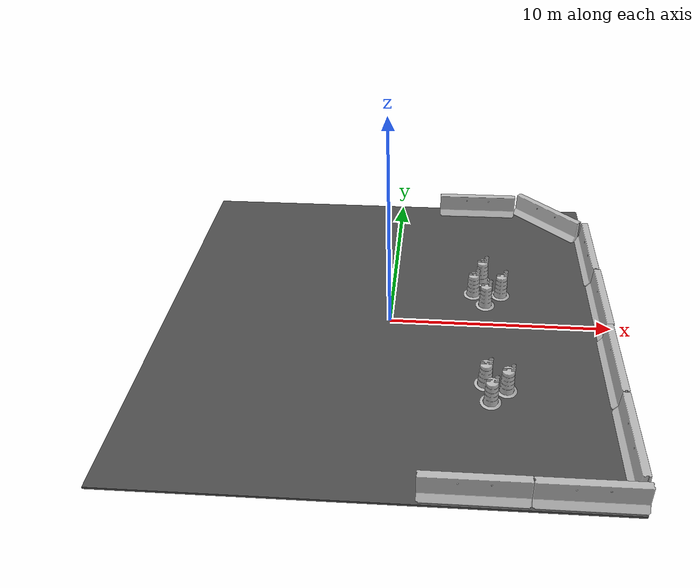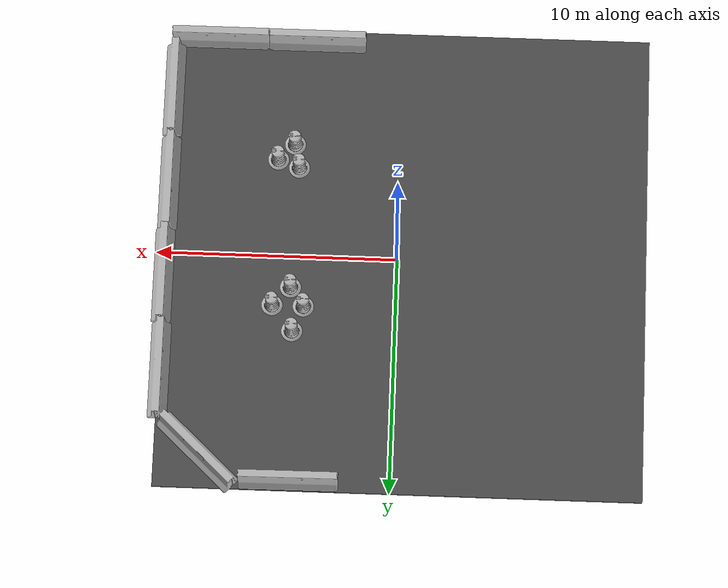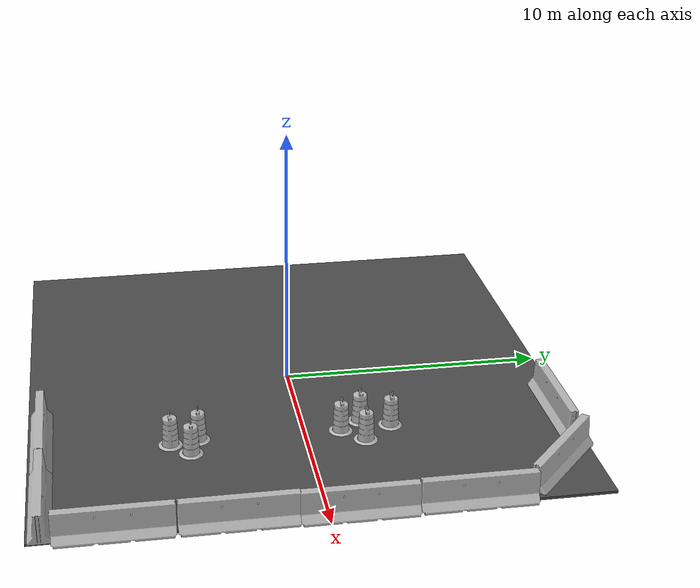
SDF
<sdf version="1.6">
 <world name="default">
  <model name="asphalt_plane">
   <static>1</static>
   <link name="link">
    <collision name="collision"><geometry><box><size>20.0001 20 0.1</size></box></geometry></collision>
    <visual name="visual">
     <cast_shadows>0</cast_shadows>
     <geometry><box><size>20.0001 20 0.1</size></box></geometry>
     <material>
      <script>
       <uri>model://asphalt_plane/materials/scripts</uri>
       <uri>model://asphalt_plane/materials/textures</uri>
       <name>vrc/asphalt</name>
      </script>
     </material>
    </visual>
   </link>
   <pose>-0.327389 0 0 0 -0 0</pose>
  </model>
  <model name="jersey_barrier_0">
   <static>1</static>
   <link name="link">
    <visual name="visual">
     <geometry>
      <mesh><uri>model://jersey_barrier/meshes/jersey_barrier.dae</uri><scale>1 1 1</scale></mesh>
     </geometry>
    </visual>
    <collision name="upright">
     <pose>0 0 0.5715 0 -0 0</pose>
     <geometry><box><size>4.06542 0.3063 1.143</size></box></geometry>
    </collision>
    <collision name="base">
     <pose>0 0 0.032258 0 -0 0</pose>
     <geometry><box><size>4.06542 0.8107 0.064516</size></box></geometry>
    </collision>
    <collision name="base2">
     <pose>0 0 0.1 0 -0 0</pose>
     <geometry><box><size>4.06542 0.65 0.1</size></box></geometry>
    </collision>
    <collision name="base3">
     <pose>0 0 0.2 0 -0 0</pose>
     <geometry><box><size>4.06542 0.5 0.1</size></box></geometry>
    </collision>
    <collision name="left-angle">
     <pose>0 -0.224 0.2401 0.9 -0 0</pose>
     <geometry><box><size>4.06542 0.5 0.064516</size></box></geometry>
    </collision>
    <collision name="right-angle">
     <pose>0 0.224 0.2401 -0.9 0 0</pose>
     <geometry><box><size>4.06542 0.5 0.064516</size></box></geometry>
    </collision>
   </link>
   <pose>3.65574 -9.51151 0 0 -0 0</pose>
  </model>
  <model name="jersey_barrier_0_clone_clone_0">
   <static>1</static>
   <link name="link">
    <visual name="visual">
     <geometry>
      <mesh><uri>model://jersey_barrier/meshes/jersey_barrier.dae</uri><scale>1 1 1</scale></mesh>
     </geometry>
    </visual>
    <collision name="upright">
     <pose>0 0 0.5715 0 -0 0</pose>
     <geometry><box><size>4.06542 0.3063 1.143</size></box></geometry>
    </collision>
    <collision name="base">
     <pose>0 0 0.032258 0 -0 0</pose>
     <geometry><box><size>4.06542 0.8107 0.064516</size></box></geometry>
    </collision>
    <collision name="base2">
     <pose>0 0 0.1 0 -0 0</pose>
     <geometry><box><size>4.06542 0.65 0.1</size></box></geometry>
    </collision>
    <collision name="base3">
     <pose>0 0 0.2 0 -0 0</pose>
     <geometry><box><size>4.06542 0.5 0.1</size></box></geometry>
    </collision>
    <collision name="left-angle">
     <pose>0 -0.224 0.2401 0.9 -0 0</pose>
     <geometry><box><size>4.06542 0.5 0.064516</size></box></geometry>
    </collision>
    <collision name="right-angle">
     <pose>0 0.224 0.2401 -0.9 0 0</pose>
     <geometry><box><size>4.06542 0.5 0.064516</size></box></geometry>
    </collision>
   </link>
   <pose>7.73169 -9.51944 0 0 -0 0</pose>
  </model>
  <model name="jersey_barrier_0_clone_clone_0_clone">
   <static>1</static>
   <link name="link">
    <visual name="visual">
     <geometry>
      <mesh><uri>model://jersey_barrier/meshes/jersey_barrier.dae</uri><scale>1 1 1</scale></mesh>
     </geometry>
    </visual>
    <collision name="upright">
     <pose>0 0 0.5715 0 -0 0</pose>
     <geometry><box><size>4.06542 0.3063 1.143</size></box></geometry>
    </collision>
    <collision name="base">
     <pose>0 0 0.032258 0 -0 0</pose>
     <geometry><box><size>4.06542 0.8107 0.064516</size></box></geometry>
    </collision>
    <collision name="base2">
     <pose>0 0 0.1 0 -0 0</pose>
     <geometry><box><size>4.06542 0.65 0.1</size></box></geometry>
    </collision>
    <collision name="base3">
     <pose>0 0 0.2 0 -0 0</pose>
     <geometry><box><size>4.06542 0.5 0.1</size></box></geometry>
    </collision>
    <collision name="left-angle">
     <pose>0 -0.224 0.2401 0.9 -0 0</pose>
     <geometry><box><size>4.06542 0.5 0.064516</size></box></geometry>
    </collision>
    <collision name="right-angle">
     <pose>0 0.224 0.2401 -0.9 0 0</pose>
     <geometry><box><size>4.06542 0.5 0.064516</size></box></geometry>
    </collision>
   </link>
   <pose>9.60369 -7.11606 0 0 -0 1.57</pose>
  </model>
  <model name="jersey_barrier_0_clone_clone_0_clone_clone">
   <static>1</static>
   <link name="link">
    <visual name="visual">
     <geometry>
      <mesh><uri>model://jersey_barrier/meshes/jersey_barrier.dae</uri><scale>1 1 1</scale></mesh>
     </geometry>
    </visual>
    <collision name="upright">
     <pose>0 0 0.5715 0 -0 0</pose>
     <geometry><box><size>4.06542 0.3063 1.143</size></box></geometry>
    </collision>
    <collision name="base">
     <pose>0 0 0.032258 0 -0 0</pose>
     <geometry><box><size>4.06542 0.8107 0.064516</size></box></geometry>
    </collision>
    <collision name="base2">
     <pose>0 0 0.1 0 -0 0</pose>
     <geometry><box><size>4.06542 0.65 0.1</size></box></geometry>
    </collision>
    <collision name="base3">
     <pose>0 0 0.2 0 -0 0</pose>
     <geometry><box><size>4.06542 0.5 0.1</size></box></geometry>
    </collision>
    <collision name="left-angle">
     <pose>0 -0.224 0.2401 0.9 -0 0</pose>
     <geometry><box><size>4.06542 0.5 0.064516</size></box></geometry>
    </collision>
    <collision name="right-angle">
     <pose>0 0.224 0.2401 -0.9 0 0</pose>
     <geometry><box><size>4.06542 0.5 0.064516</size></box></geometry>
    </collision>
   </link>
   <pose>9.60924 -3.00371 0 0 -0 1.57</pose>
  </model>
  <model name="jersey_barrier_0_clone_clone_0_clone_clone_0">
   <static>1</static>
   <link name="link">
    <visual name="visual">
     <geometry>
      <mesh><uri>model://jersey_barrier/meshes/jersey_barrier.dae</uri><scale>1 1 1</scale></mesh>
     </geometry>
    </visual>
    <collision name="upright">
     <pose>0 0 0.5715 0 -0 0</pose>
     <geometry><box><size>4.06542 0.3063 1.143</size></box></geometry>
    </collision>
    <collision name="base">
     <pose>0 0 0.032258 0 -0 0</pose>
     <geometry><box><size>4.06542 0.8107 0.064516</size></box></geometry>
    </collision>
    <collision name="base2">
     <pose>0 0 0.1 0 -0 0</pose>
     <geometry><box><size>4.06542 0.65 0.1</size></box></geometry>
    </collision>
    <collision name="base3">
     <pose>0 0 0.2 0 -0 0</pose>
     <geometry><box><size>4.06542 0.5 0.1</size></box></geometry>
    </collision>
    <collision name="left-angle">
     <pose>0 -0.224 0.2401 0.9 -0 0</pose>
     <geometry><box><size>4.06542 0.5 0.064516</size></box></geometry>
    </collision>
    <collision name="right-angle">
     <pose>0 0.224 0.2401 -0.9 0 0</pose>
     <geometry><box><size>4.06542 0.5 0.064516</size></box></geometry>
    </collision>
   </link>
   <pose>9.65912 1.02011 0 0 -0 1.57</pose>
  </model>
  <model name="jersey_barrier_0_clone_clone_0_clone_clone_1">
   <static>1</static>
   <link name="link">
    <visual name="visual">
     <geometry>
      <mesh><uri>model://jersey_barrier/meshes/jersey_barrier.dae</uri><scale>1 1 1</scale></mesh>
     </geometry>
    </visual>
    <collision name="upright">
     <pose>0 0 0.5715 0 -0 0</pose>
     <geometry><box><size>4.06542 0.3063 1.143</size></box></geometry>
    </collision>
    <collision name="base">
     <pose>0 0 0.032258 0 -0 0</pose>
     <geometry><box><size>4.06542 0.8107 0.064516</size></box></geometry>
    </collision>
    <collision name="base2">
     <pose>0 0 0.1 0 -0 0</pose>
     <geometry><box><size>4.06542 0.65 0.1</size></box></geometry>
    </collision>
    <collision name="base3">
     <pose>0 0 0.2 0 -0 0</pose>
     <geometry><box><size>4.06542 0.5 0.1</size></box></geometry>
    </collision>
    <collision name="left-angle">
     <pose>0 -0.224 0.2401 0.9 -0 0</pose>
     <geometry><box><size>4.06542 0.5 0.064516</size></box></geometry>
    </collision>
    <collision name="right-angle">
     <pose>0 0.224 0.2401 -0.9 0 0</pose>
     <geometry><box><size>4.06542 0.5 0.064516</size></box></geometry>
    </collision>
   </link>
   <pose>9.60899 5.10853 0 0 -0 1.57</pose>
  </model>
  <model name="jersey_barrier_0_clone_clone_0_clone_clone_1_clone">
   <static>1</static>
   <link name="link">
    <visual name="visual">
     <geometry>
      <mesh><uri>model://jersey_barrier/meshes/jersey_barrier.dae</uri><scale>1 1 1</scale></mesh>
     </geometry>
    </visual>
    <collision name="upright">
     <pose>0 0 0.5715 0 -0 0</pose>
     <geometry><box><size>4.06542 0.3063 1.143</size></box></geometry>
    </collision>
    <collision name="base">
     <pose>0 0 0.032258 0 -0 0</pose>
     <geometry><box><size>4.06542 0.8107 0.064516</size></box></geometry>
    </collision>
    <collision name="base2">
     <pose>0 0 0.1 0 -0 0</pose>
     <geometry><box><size>4.06542 0.65 0.1</size></box></geometry>
    </collision>
    <collision name="base3">
     <pose>0 0 0.2 0 -0 0</pose>
     <geometry><box><size>4.06542 0.5 0.1</size></box></geometry>
    </collision>
    <collision name="left-angle">
     <pose>0 -0.224 0.2401 0.9 -0 0</pose>
     <geometry><box><size>4.06542 0.5 0.064516</size></box></geometry>
    </collision>
    <collision name="right-angle">
     <pose>0 0.224 0.2401 -0.9 0 0</pose>
     <geometry><box><size>4.06542 0.5 0.064516</size></box></geometry>
    </collision>
   </link>
   <pose>7.86804 8.5176 0 0 -0 2.38708</pose>
  </model>
  <model name="jersey_barrier_0_clone_clone_0_clone_clone_1_clone_clone">
   <static>1</static>
   <link name="link">
    <visual name="visual">
     <geometry>
      <mesh><uri>model://jersey_barrier/meshes/jersey_barrier.dae</uri><scale>1 1 1</scale></mesh>
     </geometry>
    </visual>
    <collision name="upright">
     <pose>0 0 0.5715 0 -0 0</pose>
     <geometry><box><size>4.06542 0.3063 1.143</size></box></geometry>
    </collision>
    <collision name="base">
     <pose>0 0 0.032258 0 -0 0</pose>
     <geometry><box><size>4.06542 0.8107 0.064516</size></box></geometry>
    </collision>
    <collision name="base2">
     <pose>0 0 0.1 0 -0 0</pose>
     <geometry><box><size>4.06542 0.65 0.1</size></box></geometry>
    </collision>
    <collision name="base3">
     <pose>0 0 0.2 0 -0 0</pose>
     <geometry><box><size>4.06542 0.5 0.1</size></box></geometry>
    </collision>
    <collision name="left-angle">
     <pose>0 -0.224 0.2401 0.9 -0 0</pose>
     <geometry><box><size>4.06542 0.5 0.064516</size></box></geometry>
    </collision>
    <collision name="right-angle">
     <pose>0 0.224 0.2401 -0.9 0 0</pose>
     <geometry><box><size>4.06542 0.5 0.064516</size></box></geometry>
    </collision>
   </link>
   <pose>4.11933 9.5754 0 0 0 -3.13684</pose>
  </model>
  <model name="Construction Barrel">
   <static>1</static>
   <link name="link">
    <inertial>
     <pose>0 0 0.4 0 -0 0</pose>
     <mass>500</mass>
     <inertia><ixx>51.2096</ixx><iyy>51.2096</iyy><izz>25</izz><ixy>0</ixy><ixz>0</ixz><iyz>0</iyz></inertia>
    </inertial>
    <collision name="collision">
     <geometry>
      <mesh><uri>model://construction_barrel/meshes/construction_barrel.dae</uri><scale>1 1 1</scale></mesh>
     </geometry>
    </collision>
    <visual name="visual">
     <geometry>
      <mesh><uri>model://construction_barrel/meshes/construction_barrel.dae</uri><scale>1 1 1</scale></mesh>
     </geometry>
    </visual>
   </link>
   <pose>4.41709 -4.90286 0 0 -0 0</pose>
  </model>
  <model name="Construction Barrel_clone">
   <static>1</static>
   <link name="link">
    <inertial>
     <pose>0 0 0.4 0 -0 0</pose>
     <mass>500</mass>
     <inertia><ixx>51.2096</ixx><iyy>51.2096</iyy><izz>25</izz><ixy>0</ixy><ixz>0</ixz><iyz>0</iyz></inertia>
    </inertial>
    <collision name="collision">
     <geometry>
      <mesh><uri>model://construction_barrel/meshes/construction_barrel.dae</uri><scale>1 1 1</scale></mesh>
     </geometry>
    </collision>
    <visual name="visual">
     <geometry>
      <mesh><uri>model://construction_barrel/meshes/construction_barrel.dae</uri><scale>1 1 1</scale></mesh>
     </geometry>
    </visual>
   </link>
   <pose>5.09318 -4.21374 0 0 -0 0</pose>
  </model>
  <model name="Construction Barrel_clone_clone">
   <static>1</static>
   <link name="link">
    <inertial>
     <pose>0 0 0.4 0 -0 0</pose>
     <mass>500</mass>
     <inertia><ixx>51.2096</ixx><iyy>51.2096</iyy><izz>25</izz><ixy>0</ixy><ixz>0</ixz><iyz>0</iyz></inertia>
    </inertial>
    <collision name="collision">
     <geometry>
      <mesh><uri>model://construction_barrel/meshes/construction_barrel.dae</uri><scale>1 1 1</scale></mesh>
     </geometry>
    </collision>
    <visual name="visual">
     <geometry>
      <mesh><uri>model://construction_barrel/meshes/construction_barrel.dae</uri><scale>1 1 1</scale></mesh>
     </geometry>
    </visual>
   </link>
   <pose>5.10084 2.13576 0 0 -0 0</pose>
  </model>
  <model name="Construction Barrel_clone_clone_0">
   <static>1</static>
   <link name="link">
    <inertial>
     <pose>0 0 0.4 0 -0 0</pose>
     <mass>500</mass>
     <inertia><ixx>51.2096</ixx><iyy>51.2096</iyy><izz>25</izz><ixy>0</ixy><ixz>0</ixz><iyz>0</iyz></inertia>
    </inertial>
    <collision name="collision">
     <geometry>
      <mesh><uri>model://construction_barrel/meshes/construction_barrel.dae</uri><scale>1 1 1</scale></mesh>
     </geometry>
    </collision>
    <visual name="visual">
     <geometry>
      <mesh><uri>model://construction_barrel/meshes/construction_barrel.dae</uri><scale>1 1 1</scale></mesh>
     </geometry>
    </visual>
   </link>
   <pose>4.36445 1.34625 0 0 -0 0</pose>
  </model>
  <model name="Construction Barrel_clone_clone_0_clone">
   <static>1</static>
   <link name="link">
    <inertial>
     <pose>0 0 0.4 0 -0 0</pose>
     <mass>500</mass>
     <inertia><ixx>51.2096</ixx><iyy>51.2096</iyy><izz>25</izz><ixy>0</ixy><ixz>0</ixz><iyz>0</iyz></inertia>
    </inertial>
    <collision name="collision">
     <geometry>
      <mesh><uri>model://construction_barrel/meshes/construction_barrel.dae</uri><scale>1 1 1</scale></mesh>
     </geometry>
    </collision>
    <visual name="visual">
     <geometry>
      <mesh><uri>model://construction_barrel/meshes/construction_barrel.dae</uri><scale>1 1 1</scale></mesh>
     </geometry>
    </visual>
   </link>
   <pose>4.23716 3.2293 0 0 -0 0</pose>
  </model>
  <model name="Construction Barrel_clone_clone_0_clone_clone">
   <static>1</static>
   <link name="link">
    <inertial>
     <pose>0 0 0.4 0 -0 0</pose>
     <mass>500</mass>
     <inertia><ixx>51.2096</ixx><iyy>51.2096</iyy><izz>25</izz><ixy>0</ixy><ixz>0</ixz><iyz>0</iyz></inertia>
    </inertial>
    <collision name="collision">
     <geometry>
      <mesh><uri>model://construction_barrel/meshes/construction_barrel.dae</uri><scale>1 1 1</scale></mesh>
     </geometry>
    </collision>
    <visual name="visual">
     <geometry>
      <mesh><uri>model://construction_barrel/meshes/construction_barrel.dae</uri><scale>1 1 1</scale></mesh>
     </geometry>
    </visual>
   </link>
   <pose>3.80438 2.1543 0 0 -0 0</pose>
  </model>
  <model name="Construction Barrel_clone_clone_0_clone_clone_0">
   <static>1</static>
   <link name="link">
    <inertial>
     <pose>0 0 0.4 0 -0 0</pose>
     <mass>500</mass>
     <inertia><ixx>51.2096</ixx><iyy>51.2096</iyy><izz>25</izz><ixy>0</ixy><ixz>0</ixz><iyz>0</iyz></inertia>
    </inertial>
    <collision name="collision">
     <geometry>
      <mesh><uri>model://construction_barrel/meshes/construction_barrel.dae</uri><scale>1 1 1</scale></mesh>
     </geometry>
    </collision>
    <visual name="visual">
     <geometry>
      <mesh><uri>model://construction_barrel/meshes/construction_barrel.dae</uri><scale>1 1 1</scale></mesh>
     </geometry>
    </visual>
   </link>
   <pose>4.20943 -3.88279 0 0 -0 0</pose>
  </model>
 </world>
</sdf>
